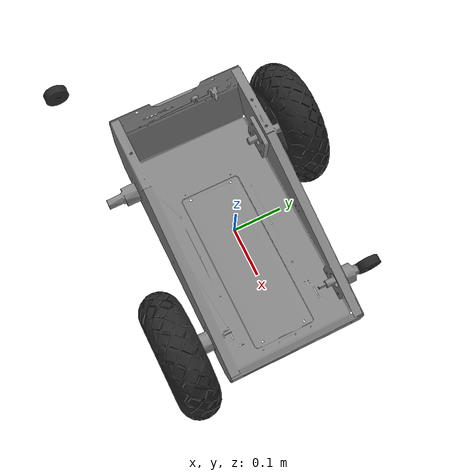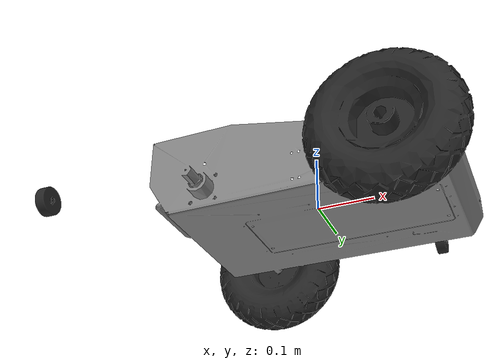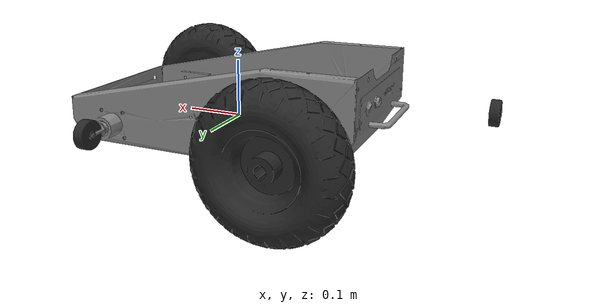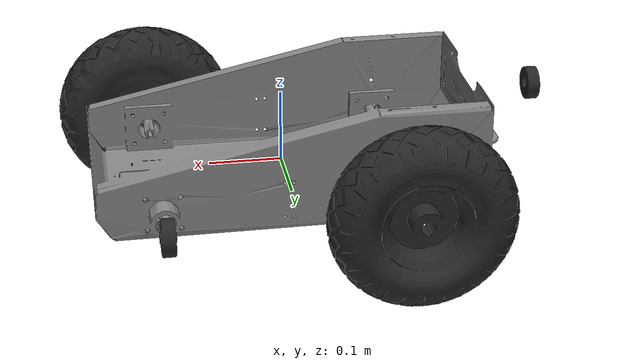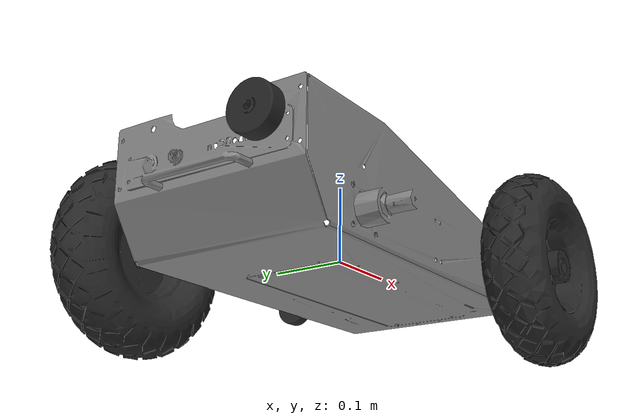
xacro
<robot name="komodo_rover">
	<!-- Load all the links  -->
	<link name="base_link">
    		<inertial>
      			<origin rpy="0 0 0" xyz="-0.0205330571995271 4.54409684683429E-05 0.00735986203300292" />
      			<mass value="45.0894999160313" />
      			<inertia ixx="0.723503030508731" ixy="-46.8485359152423E-05" ixz="-0.0875564429068847" iyy="1.38127064231828" iyz="11.9695110167269E-05" izz="1.94371448739423" />
    		</inertial>
    		<visual>
      			<origin rpy="0 0 0" xyz="0 0 0" />
			<geometry>
				<mesh filename="package://robotican_description/komodo/meshes/col_base_link.STL" />
			</geometry>
			<material name="">
				<color rgba="0.52941176470588 0.52941176470588 0.52941176470588 1" />
			</material>
    		</visual>
    		<collision>
      			<origin rpy="0 0 0" xyz="-0.065 0 0" />
      			<geometry>
        			<mesh filename="package://robotican_description/komodo/meshes/col_base_link.STL" />
      			</geometry>
    		</collision>
  	</link>

	<link name="FL_Wheel_link">
    		<inertial>
      			<origin rpy="0 0 0" xyz="-0.00160662480262744 -2.59228543311729E-06 1.49951351856364E-05" />
      			<mass value="3.83427523136739" />
      			<inertia ixx="0.0296525525807749" ixy="1.51001277133356E-06" ixz="2.35766660656153E-06" iyy="0.0163749526386264" iyz="1.2254511654214E-06" izz="0.0163720506916083" />
    		</inertial>
    		<visual>
      			<origin rpy="0 0 0" xyz="0 0 0" />
      			<geometry>
        			<mesh filename="package://robotican_description/komodo/meshes/FL_Wheel_link.STL" />
      			</geometry>
      			<material name="">
        			<color rgba="0.15 0.15 0.15 1" />
      			</material>
    		</visual>
    		<collision>
      			<origin rpy="0 1.5 0" xyz="0 0 0" />
      			<geometry>
        			<cylinder length="0.05" radius="0.1" />
      			</geometry>
    		</collision>
  	</link>

	<link name="FR_Wheel_link">
    		<inertial>
      			<origin rpy="0 0 0" xyz="-0.00160662478940524 -2.59227836232889E-06 1.49952129885679E-05" />
      			<mass value="3.8342752339456" />
      			<inertia ixx="0.0296525526023316" ixy="1.51001308635369E-06" ixz="2.3576732629264E-06" iyy="0.0163749526634419" iyz="1.22545882852199E-06" izz="0.0163720506902763" />
    		</inertial>
    		<visual>
      			<origin rpy="0 0 0" xyz="0 0 0" />
      			<geometry>
        			<mesh filename="package://robotican_description/komodo/meshes/FR_Wheel_link.STL" />
      			</geometry>
      			<material name="">
        			<color rgba="0.15 0.15 0.15 1" />
      			</material>
    		</visual>
    		<collision>
      			<origin rpy="0 1.5 0" xyz="0 0 0" />
      			<geometry>
        			<cylinder length="0.05" radius="0.1" />
      			</geometry>
    		</collision>
  	</link>

	<link name="RL_Wheel_link">
    		<inertial>
      			<origin rpy="0 0 0" xyz="-0.00160662477936549 -2.59222765522371E-06 1.49952106412736E-05" />
      			<mass value="3.83427523542708" />
      			<inertia ixx="0.0296525526119397" ixy="1.5100179619978E-06" ixz="2.35767335983606E-06" iyy="0.0163749526769378" iyz="1.22544931791974E-06" izz="0.0163720506885898" />
    		</inertial>
    		<visual>
      			<origin rpy="0 0 0" xyz="0 0 0" />
      			<geometry>
        			<mesh filename="package://robotican_description/komodo/meshes/RL_Wheel_link.STL" />
      			</geometry>
      			<material name="">
        			<color rgba="0.15 0.15 0.15 1" />
      			</material>
    		</visual>
   	 	<collision>
      			<origin rpy="0 1.5 0" xyz="0 0 0" />
      			<geometry>
        			<cylinder length="0.05" radius="0.1" />
      			</geometry>
    		</collision>
  	</link>

	<link name="RR_Wheel_link">
    		<inertial>
      			<origin rpy="0 0 0" xyz="-0.00160662476834383 -2.59238516814309E-06 1.49950507030127E-05" />
      			<mass value="3.83427523968864" />
      			<inertia ixx="0.0296525526652264" ixy="1.5100019082583E-06" ixz="2.35765651707649E-06" iyy="0.0163749526901628" iyz="1.22544631738128E-06" izz="0.0163720507270359" />
    		</inertial>
    		<visual>
      			<origin rpy="0 0 0" xyz="0 0 0" />
      			<geometry>
        			<mesh filename="package://robotican_description/komodo/meshes/RR_Wheel_link.STL" />
      			</geometry>
      			<material name="">
        			<color rgba="0.15 0.15 0.15 1" />
      			</material>
    		</visual>
    		<collision>
      			<origin rpy="0 1.5 0" xyz="0 0 0" />
      			<geometry>
        			<cylinder length="0.05" radius="0.1" />
      			</geometry>
    		</collision>
  	</link>
	<!--         END         -->

	<!-- Load all the joints -->
	<joint name="FR_Wheel_joint" type="continuous">
    		<origin xyz="0.173999999999995 -0.2009 0" rpy="2.62229105359916E-15 6.9308460464278E-17 1.5707963267949" />
    		<parent link="base_link" />
    		<child link="FR_Wheel_link" />
    		<axis xyz="1 0 0" />
  	</joint>

	<joint name="FL_Wheel_joint" type="continuous">
    		<origin xyz="0.173999999999995 0.2009 0" rpy="-2.62229105359916E-15 6.93084604642783E-17 -1.5707963267949" />
    		<parent link="base_link" />
    		<child link="FL_Wheel_link" />
    		<axis xyz="-1 0 0" />
  	</joint>

	<joint name="RR_Wheel_joint" type="continuous">
    		<origin xyz="-0.156000000000005 -0.2009 0" rpy="2.62229105359916E-15 -1.59433090848306E-31 1.5707963267949" />
    		<parent link="base_link" />
    		<child link="RR_Wheel_link" />
    		<axis xyz="1 0 0" />
  	</joint>

	<joint name="RL_Wheel_joint" type="continuous">
    		<origin xyz="-0.156000000000005 0.2009 0" rpy="-2.62229105359916E-15 -5.57680208627196E-32 -1.5707963267949" />
    		<parent link="base_link" />
    		<child link="RL_Wheel_link" />
    		<axis xyz="-1 0 0" />
  	</joint>
	<!--         END         -->
</robot>
